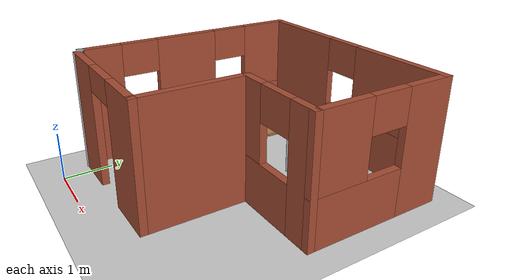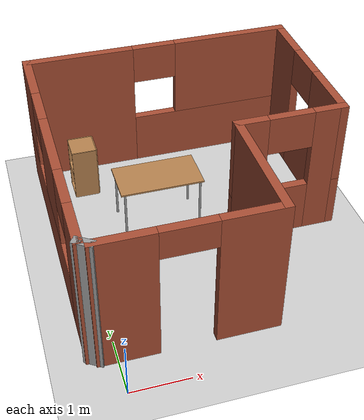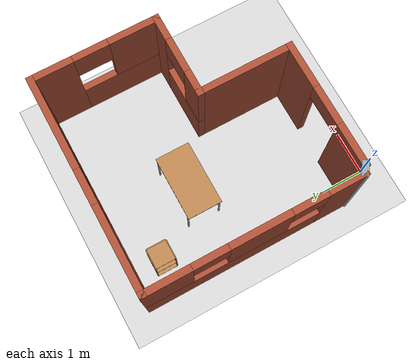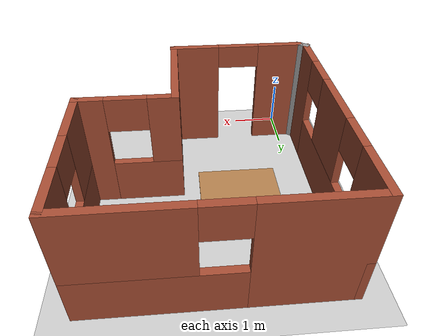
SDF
<sdf version="1.7">
 <world name="default">
  <light name="sun" type="directional">
   <pose>0 0 10 0 -0 0</pose>
   <diffuse>0.8 0.8 0.8 1</diffuse>
   <specular>0.2 0.2 0.2 1</specular>
   <attenuation>
    <range>1000</range>
    <constant>0.9</constant>
    <linear>0.01</linear>
    <quadratic>0.001</quadratic>
   </attenuation>
   <direction>-0.5 0.1 -0.9</direction>
   <spot><inner_angle>0</inner_angle><outer_angle>0</outer_angle><falloff>0</falloff></spot>
  </light>
  <model name="ground_plane">
   <static>1</static>
   <link name="link">
    <collision name="collision">
     <geometry><plane><normal>0 0 1</normal><size>100 100</size></plane></geometry>
     <surface><friction><ode><mu>100</mu><mu2>50</mu2></ode></friction></surface>
    </collision>
    <visual name="visual">
     <cast_shadows>0</cast_shadows>
     <geometry><plane><normal>0 0 1</normal><size>100 100</size></plane></geometry>
     <material>
      <script><uri>file://media/materials/scripts/gazebo.material</uri><name>Gazebo/Grey</name></script>
     </material>
    </visual>
   </link>
  </model>
  <gravity>0 0 -9.8</gravity>
  <magnetic_field>6e-06 2.3e-05 -4.2e-05</magnetic_field>
  <atmosphere type="adiabatic"/>
  <physics type="ode">
   <max_step_size>0.001</max_step_size>
   <real_time_factor>1</real_time_factor>
   <real_time_update_rate>1000</real_time_update_rate>
  </physics>
  <scene><ambient>0.4 0.4 0.4 1</ambient><background>0.7 0.7 0.7 1</background><shadows>1</shadows></scene>
  <audio><device>default</device></audio>
  <spherical_coordinates>
   <surface_model>EARTH_WGS84</surface_model>
   <latitude_deg>0</latitude_deg>
   <longitude_deg>0</longitude_deg>
   <elevation>0</elevation>
   <heading_deg>0</heading_deg>
  </spherical_coordinates>
  <model name="office">
   <pose>1.99467 4.71474 0 0 -0 0</pose>
   <link name="Wall_10">
    <pose>2.4395 -0.530632 0 0 -0 -1.5708</pose>
    <visual name="Wall_10_Visual_0">
     <pose>-0.995318 0 1.25 0 -0 0</pose>
     <geometry><box><size>1.00936 0.15 2.5</size></box></geometry>
     <material>
      <script><uri>file://media/materials/scripts/gazebo.material</uri><name>Gazebo/Bricks</name></script>
      <ambient>1 1 1 1</ambient>
     </material>
     <meta><layer>0</layer></meta>
    </visual>
    <collision name="Wall_10_Collision_0">
     <geometry><box><size>1.00936 0.15 2.5</size></box></geometry>
     <pose>-0.995318 0 1.25 0 -0 0</pose>
    </collision>
    <visual name="Wall_10_Visual_1">
     <pose>0.504682 0 0.5 0 -0 0</pose>
     <geometry><box><size>1.99064 0.15 1</size></box></geometry>
     <material>
      <script><uri>file://media/materials/scripts/gazebo.material</uri><name>Gazebo/Bricks</name></script>
      <ambient>1 1 1 1</ambient>
     </material>
     <meta><layer>0</layer></meta>
    </visual>
    <collision name="Wall_10_Collision_1">
     <geometry><box><size>1.99064 0.15 1</size></box></geometry>
     <pose>0.504682 0 0.5 0 -0 0</pose>
    </collision>
    <visual name="Wall_10_Visual_2">
     <pose>0.904682 0 1.75 0 -0 0</pose>
     <geometry><box><size>1.19064 0.15 1.5</size></box></geometry>
     <material>
      <script><uri>file://media/materials/scripts/gazebo.material</uri><name>Gazebo/Bricks</name></script>
      <ambient>1 1 1 1</ambient>
     </material>
     <meta><layer>0</layer></meta>
    </visual>
    <collision name="Wall_10_Collision_2">
     <geometry><box><size>1.19064 0.15 1.5</size></box></geometry>
     <pose>0.904682 0 1.75 0 -0 0</pose>
    </collision>
    <visual name="Wall_10_Visual_3">
     <pose>-0.090637 0 2.15 0 -0 0</pose>
     <geometry><box><size>0.8 0.15 0.7</size></box></geometry>
     <material>
      <script><uri>file://media/materials/scripts/gazebo.material</uri><name>Gazebo/Bricks</name></script>
      <ambient>1 1 1 1</ambient>
     </material>
     <meta><layer>0</layer></meta>
    </visual>
    <collision name="Wall_10_Collision_3">
     <geometry><box><size>0.8 0.15 0.7</size></box></geometry>
     <pose>-0.090637 0 2.15 0 -0 0</pose>
    </collision>
   </link>
   <link name="Wall_11">
    <pose>1.5145 -1.95563 0 0 -0 3.14159</pose>
    <visual name="Wall_11_Visual_0">
     <pose>-0.699407 0 1.25 0 -0 0</pose>
     <geometry><box><size>0.601186 0.15 2.5</size></box></geometry>
     <material>
      <script><uri>file://media/materials/scripts/gazebo.material</uri><name>Gazebo/Bricks</name></script>
      <ambient>1 1 1 1</ambient>
     </material>
     <meta><layer>0</layer></meta>
    </visual>
    <collision name="Wall_11_Collision_0">
     <geometry><box><size>0.601186 0.15 2.5</size></box></geometry>
     <pose>-0.699407 0 1.25 0 -0 0</pose>
    </collision>
    <visual name="Wall_11_Visual_1">
     <pose>0.300593 0 0.5 0 -0 0</pose>
     <geometry><box><size>1.39881 0.15 1</size></box></geometry>
     <material>
      <script><uri>file://media/materials/scripts/gazebo.material</uri><name>Gazebo/Bricks</name></script>
      <ambient>1 1 1 1</ambient>
     </material>
     <meta><layer>0</layer></meta>
    </visual>
    <collision name="Wall_11_Collision_1">
     <geometry><box><size>1.39881 0.15 1</size></box></geometry>
     <pose>0.300593 0 0.5 0 -0 0</pose>
    </collision>
    <visual name="Wall_11_Visual_2">
     <pose>0.700593 0 1.75 0 -0 0</pose>
     <geometry><box><size>0.598814 0.15 1.5</size></box></geometry>
     <material>
      <script><uri>file://media/materials/scripts/gazebo.material</uri><name>Gazebo/Bricks</name></script>
      <ambient>1 1 1 1</ambient>
     </material>
     <meta><layer>0</layer></meta>
    </visual>
    <collision name="Wall_11_Collision_2">
     <geometry><box><size>0.598814 0.15 1.5</size></box></geometry>
     <pose>0.700593 0 1.75 0 -0 0</pose>
    </collision>
    <visual name="Wall_11_Visual_3">
     <pose>0.001186 0 2.15 0 -0 0</pose>
     <geometry><box><size>0.8 0.15 0.7</size></box></geometry>
     <material>
      <script><uri>file://media/materials/scripts/gazebo.material</uri><name>Gazebo/Bricks</name></script>
      <ambient>1 1 1 1</ambient>
     </material>
     <meta><layer>0</layer></meta>
    </visual>
    <collision name="Wall_11_Collision_3">
     <geometry><box><size>0.8 0.15 0.7</size></box></geometry>
     <pose>0.001186 0 2.15 0 -0 0</pose>
    </collision>
   </link>
   <link name="Wall_12">
    <collision name="Wall_12_Collision">
     <geometry><box><size>2.25 0.15 2.5</size></box></geometry>
     <pose>0 0 1.25 0 -0 0</pose>
    </collision>
    <visual name="Wall_12_Visual">
     <pose>0 0 1.25 0 -0 0</pose>
     <geometry><box><size>2.25 0.15 2.5</size></box></geometry>
     <material>
      <script><uri>file://media/materials/scripts/gazebo.material</uri><name>Gazebo/Bricks</name></script>
      <ambient>1 1 1 1</ambient>
     </material>
     <meta><layer>0</layer></meta>
    </visual>
    <pose>0.589503 -3.00563 0 0 -0 -1.5708</pose>
   </link>
   <link name="Wall_13">
    <pose>-0.835497 -4.05563 0 0 -0 3.14159</pose>
    <visual name="Wall_13_Visual_0">
     <pose>-0.955959 0 1.25 0 -0 0</pose>
     <geometry><box><size>1.08808 0.15 2.5</size></box></geometry>
     <material>
      <script><uri>file://media/materials/scripts/gazebo.material</uri><name>Gazebo/Bricks</name></script>
      <ambient>1 1 1 1</ambient>
     </material>
     <meta><layer>0</layer></meta>
    </visual>
    <collision name="Wall_13_Collision_0">
     <geometry><box><size>1.08808 0.15 2.5</size></box></geometry>
     <pose>-0.955959 0 1.25 0 -0 0</pose>
    </collision>
    <visual name="Wall_13_Visual_1">
     <pose>0.994041 0 1.25 0 -0 0</pose>
     <geometry><box><size>1.01192 0.15 2.5</size></box></geometry>
     <material>
      <script><uri>file://media/materials/scripts/gazebo.material</uri><name>Gazebo/Bricks</name></script>
      <ambient>1 1 1 1</ambient>
     </material>
     <meta><layer>0</layer></meta>
    </visual>
    <collision name="Wall_13_Collision_1">
     <geometry><box><size>1.01192 0.15 2.5</size></box></geometry>
     <pose>0.994041 0 1.25 0 -0 0</pose>
    </collision>
    <visual name="Wall_13_Visual_2">
     <pose>0.038083 0 2.25 0 -0 0</pose>
     <geometry><box><size>0.9 0.15 0.5</size></box></geometry>
     <material>
      <script><uri>file://media/materials/scripts/gazebo.material</uri><name>Gazebo/Bricks</name></script>
      <ambient>1 1 1 1</ambient>
     </material>
     <meta><layer>0</layer></meta>
    </visual>
    <collision name="Wall_13_Collision_2">
     <geometry><box><size>0.9 0.15 0.5</size></box></geometry>
     <pose>0.038083 0 2.25 0 -0 0</pose>
    </collision>
   </link>
   <link name="Wall_14">
    <collision name="Wall_14_Collision">
     <geometry><box><size>0.330278 0.15 2.5</size></box></geometry>
     <pose>0 0 1.25 0 -0 0</pose>
    </collision>
    <visual name="Wall_14_Visual">
     <pose>0 0 1.25 0 -0 0</pose>
     <geometry><box><size>0.330278 0.15 2.5</size></box></geometry>
     <material>
      <script><uri>file://media/materials/scripts/gazebo.material</uri><name>Gazebo/Grey</name></script>
      <ambient>1 1 1 1</ambient>
     </material>
     <meta><layer>0</layer></meta>
    </visual>
    <pose>-2.3355 -4.00563 0 0 -0 2.55359</pose>
   </link>
   <link name="Wall_8">
    <pose>-2.4105 -1.53063 0 0 -0 1.5708</pose>
    <visual name="Wall_8_Visual_0">
     <pose>-2.05615 0 1.25 0 -0 0</pose>
     <geometry><box><size>0.887703 0.15 2.5</size></box></geometry>
     <material>
      <script><uri>file://media/materials/scripts/gazebo.material</uri><name>Gazebo/Bricks</name></script>
      <ambient>1 1 1 1</ambient>
     </material>
     <meta><layer>0</layer></meta>
    </visual>
    <collision name="Wall_8_Collision_0">
     <geometry><box><size>0.887703 0.15 2.5</size></box></geometry>
     <pose>-2.05615 0 1.25 0 -0 0</pose>
    </collision>
    <visual name="Wall_8_Visual_1">
     <pose>0.443852 0 0.5 0 -0 0</pose>
     <geometry><box><size>4.1123 0.15 1</size></box></geometry>
     <material>
      <script><uri>file://media/materials/scripts/gazebo.material</uri><name>Gazebo/Bricks</name></script>
      <ambient>1 1 1 1</ambient>
     </material>
     <meta><layer>0</layer></meta>
    </visual>
    <collision name="Wall_8_Collision_1">
     <geometry><box><size>4.1123 0.15 1</size></box></geometry>
     <pose>0.443852 0 0.5 0 -0 0</pose>
    </collision>
    <visual name="Wall_8_Visual_2">
     <pose>-0.118985 0 1.75 0 -0 0</pose>
     <geometry><box><size>1.38662 0.15 1.5</size></box></geometry>
     <material>
      <script><uri>file://media/materials/scripts/gazebo.material</uri><name>Gazebo/Bricks</name></script>
      <ambient>1 1 1 1</ambient>
     </material>
     <meta><layer>0</layer></meta>
    </visual>
    <collision name="Wall_8_Collision_2">
     <geometry><box><size>1.38662 0.15 1.5</size></box></geometry>
     <pose>-0.118985 0 1.75 0 -0 0</pose>
    </collision>
    <visual name="Wall_8_Visual_3">
     <pose>1.93716 0 1.75 0 -0 0</pose>
     <geometry><box><size>1.12567 0.15 1.5</size></box></geometry>
     <material>
      <script><uri>file://media/materials/scripts/gazebo.material</uri><name>Gazebo/Bricks</name></script>
      <ambient>1 1 1 1</ambient>
     </material>
     <meta><layer>0</layer></meta>
    </visual>
    <collision name="Wall_8_Collision_3">
     <geometry><box><size>1.12567 0.15 1.5</size></box></geometry>
     <pose>1.93716 0 1.75 0 -0 0</pose>
    </collision>
    <visual name="Wall_8_Visual_4">
     <pose>-1.2123 0 2.15 0 -0 0</pose>
     <geometry><box><size>0.8 0.15 0.7</size></box></geometry>
     <material>
      <script><uri>file://media/materials/scripts/gazebo.material</uri><name>Gazebo/Bricks</name></script>
      <ambient>1 1 1 1</ambient>
     </material>
     <meta><layer>0</layer></meta>
    </visual>
    <collision name="Wall_8_Collision_4">
     <geometry><box><size>0.8 0.15 0.7</size></box></geometry>
     <pose>-1.2123 0 2.15 0 -0 0</pose>
    </collision>
    <visual name="Wall_8_Visual_5">
     <pose>0.974327 0 2.15 0 -0 0</pose>
     <geometry><box><size>0.8 0.15 0.7</size></box></geometry>
     <material>
      <script><uri>file://media/materials/scripts/gazebo.material</uri><name>Gazebo/Bricks</name></script>
      <ambient>1 1 1 1</ambient>
     </material>
     <meta><layer>0</layer></meta>
    </visual>
    <collision name="Wall_8_Collision_5">
     <geometry><box><size>0.8 0.15 0.7</size></box></geometry>
     <pose>0.974327 0 2.15 0 -0 0</pose>
    </collision>
   </link>
   <link name="Wall_9">
    <pose>0.014503 0.894367 0 0 -0 0</pose>
    <visual name="Wall_9_Visual_0">
     <pose>-1.4915 0 1.25 0 -0 0</pose>
     <geometry><box><size>2.017 0.15 2.5</size></box></geometry>
     <material>
      <script><uri>file://media/materials/scripts/gazebo.material</uri><name>Gazebo/Bricks</name></script>
      <ambient>1 1 1 1</ambient>
     </material>
     <meta><layer>0</layer></meta>
    </visual>
    <collision name="Wall_9_Collision_0">
     <geometry><box><size>2.017 0.15 2.5</size></box></geometry>
     <pose>-1.4915 0 1.25 0 -0 0</pose>
    </collision>
    <visual name="Wall_9_Visual_1">
     <pose>1.0085 0 0.5 0 -0 0</pose>
     <geometry><box><size>2.983 0.15 1</size></box></geometry>
     <material>
      <script><uri>file://media/materials/scripts/gazebo.material</uri><name>Gazebo/Bricks</name></script>
      <ambient>1 1 1 1</ambient>
     </material>
     <meta><layer>0</layer></meta>
    </visual>
    <collision name="Wall_9_Collision_1">
     <geometry><box><size>2.983 0.15 1</size></box></geometry>
     <pose>1.0085 0 0.5 0 -0 0</pose>
    </collision>
    <visual name="Wall_9_Visual_2">
     <pose>1.4085 0 1.75 0 -0 0</pose>
     <geometry><box><size>2.183 0.15 1.5</size></box></geometry>
     <material>
      <script><uri>file://media/materials/scripts/gazebo.material</uri><name>Gazebo/Bricks</name></script>
      <ambient>1 1 1 1</ambient>
     </material>
     <meta><layer>0</layer></meta>
    </visual>
    <collision name="Wall_9_Collision_2">
     <geometry><box><size>2.183 0.15 1.5</size></box></geometry>
     <pose>1.4085 0 1.75 0 -0 0</pose>
    </collision>
    <visual name="Wall_9_Visual_3">
     <pose>-0.082999 0 2.15 0 -0 0</pose>
     <geometry><box><size>0.8 0.15 0.7</size></box></geometry>
     <material>
      <script><uri>file://media/materials/scripts/gazebo.material</uri><name>Gazebo/Bricks</name></script>
      <ambient>1 1 1 1</ambient>
     </material>
     <meta><layer>0</layer></meta>
    </visual>
    <collision name="Wall_9_Collision_3">
     <geometry><box><size>0.8 0.15 0.7</size></box></geometry>
     <pose>-0.082999 0 2.15 0 -0 0</pose>
    </collision>
   </link>
   <static>1</static>
  </model>
  <model name="table">
   <static>1</static>
   <link name="link">
    <collision name="surface">
     <pose>0 0 1 0 -0 0</pose>
     <geometry><box><size>1.5 0.8 0.03</size></box></geometry>
     <surface><friction><ode><mu>0.6</mu><mu2>0.6</mu2></ode></friction></surface>
    </collision>
    <visual name="visual1">
     <pose>0 0 1 0 -0 0</pose>
     <geometry><box><size>1.5 0.8 0.03</size></box></geometry>
     <material>
      <script><uri>file://media/materials/scripts/gazebo.material</uri><name>Gazebo/Wood</name></script>
     </material>
    </visual>
    <collision name="front_left_leg">
     <pose>0.68 0.38 0.5 0 -0 0</pose>
     <geometry><cylinder><radius>0.02</radius><length>1</length></cylinder></geometry>
    </collision>
    <visual name="front_left_leg">
     <pose>0.68 0.38 0.5 0 -0 0</pose>
     <geometry><cylinder><radius>0.02</radius><length>1</length></cylinder></geometry>
     <material>
      <script><uri>file://media/materials/scripts/gazebo.material</uri><name>Gazebo/Grey</name></script>
     </material>
    </visual>
    <collision name="front_right_leg">
     <pose>0.68 -0.38 0.5 0 -0 0</pose>
     <geometry><cylinder><radius>0.02</radius><length>1</length></cylinder></geometry>
    </collision>
    <visual name="front_right_leg">
     <pose>0.68 -0.38 0.5 0 -0 0</pose>
     <geometry><cylinder><radius>0.02</radius><length>1</length></cylinder></geometry>
     <material>
      <script><uri>file://media/materials/scripts/gazebo.material</uri><name>Gazebo/Grey</name></script>
     </material>
    </visual>
    <collision name="back_right_leg">
     <pose>-0.68 -0.38 0.5 0 -0 0</pose>
     <geometry><cylinder><radius>0.02</radius><length>1</length></cylinder></geometry>
    </collision>
    <visual name="back_right_leg">
     <pose>-0.68 -0.38 0.5 0 -0 0</pose>
     <geometry><cylinder><radius>0.02</radius><length>1</length></cylinder></geometry>
     <material>
      <script><uri>file://media/materials/scripts/gazebo.material</uri><name>Gazebo/Grey</name></script>
     </material>
    </visual>
    <collision name="back_left_leg">
     <pose>-0.68 0.38 0.5 0 -0 0</pose>
     <geometry><cylinder><radius>0.02</radius><length>1</length></cylinder></geometry>
    </collision>
    <visual name="back_left_leg">
     <pose>-0.68 0.38 0.5 0 -0 0</pose>
     <geometry><cylinder><radius>0.02</radius><length>1</length></cylinder></geometry>
     <material>
      <script><uri>file://media/materials/scripts/gazebo.material</uri><name>Gazebo/Grey</name></script>
     </material>
    </visual>
   </link>
   <pose>1.45453 3.6534 0 0 -0 0</pose>
  </model>
  <model name="cabinet">
   <static>1</static>
   <link name="cabinet_bottom_plate">
    <inertial>
     <pose>0 0 -1 0 -0 0</pose>
     <inertia><ixx>2.05</ixx><ixy>0</ixy><ixz>0</ixz><iyy>2.05</iyy><iyz>0</iyz><izz>2.05</izz></inertia>
     <mass>25</mass>
    </inertial>
    <collision name="cabinet_bottom_plate_geom">
     <pose>0 0 0.01 0 -0 0</pose>
     <geometry><box><size>0.45 0.45 0.02</size></box></geometry>
    </collision>
    <visual name="cabinet_bottom_plate_geom_visual">
     <pose>0 0 0.01 0 -0 0</pose>
     <geometry><box><size>0.45 0.45 0.02</size></box></geometry>
     <material>
      <script><uri>file://media/materials/scripts/gazebo.material</uri><name>Gazebo/Wood</name></script>
     </material>
    </visual>
    <collision name="cabinet_bottom_plate_geom_cabinet_back_plate">
     <pose>0.235 0 0.51 0 -0 0</pose>
     <geometry><box><size>0.02 0.45 1.02</size></box></geometry>
    </collision>
    <visual name="cabinet_bottom_plate_geom_cabinet_back_plate_visual">
     <pose>0.235 0 0.51 0 -0 0</pose>
     <geometry><box><size>0.02 0.45 1.02</size></box></geometry>
     <material>
      <script><uri>file://media/materials/scripts/gazebo.material</uri><name>Gazebo/Wood</name></script>
     </material>
    </visual>
    <collision name="cabinet_bottom_plate_geom_cabinet_left_plate">
     <pose>0 0.235 0.51 0 -0 0</pose>
     <geometry><box><size>0.45 0.02 1.02</size></box></geometry>
    </collision>
    <visual name="cabinet_bottom_plate_geom_cabinet_left_plate_visual">
     <pose>0 0.235 0.51 0 -0 0</pose>
     <geometry><box><size>0.45 0.02 1.02</size></box></geometry>
     <material>
      <script><uri>file://media/materials/scripts/gazebo.material</uri><name>Gazebo/Wood</name></script>
     </material>
    </visual>
    <collision name="cabinet_bottom_plate_geom_cabinet_middle_plate">
     <pose>0 0 0.51 0 -0 0</pose>
     <geometry><box><size>0.45 0.45 0.02</size></box></geometry>
    </collision>
    <visual name="cabinet_bottom_plate_geom_cabinet_middle_plate_visual">
     <pose>0 0 0.51 0 -0 0</pose>
     <geometry><box><size>0.45 0.45 0.02</size></box></geometry>
     <material>
      <script><uri>file://media/materials/scripts/gazebo.material</uri><name>Gazebo/Wood</name></script>
     </material>
    </visual>
    <collision name="cabinet_bottom_plate_geom_cabinet_right_plate">
     <pose>0 -0.235 0.51 0 -0 0</pose>
     <geometry><box><size>0.45 0.02 1.02</size></box></geometry>
    </collision>
    <visual name="cabinet_bottom_plate_geom_cabinet_right_plate_visual">
     <pose>0 -0.235 0.51 0 -0 0</pose>
     <geometry><box><size>0.45 0.02 1.02</size></box></geometry>
     <material>
      <script><uri>file://media/materials/scripts/gazebo.material</uri><name>Gazebo/Wood</name></script>
     </material>
    </visual>
    <collision name="cabinet_bottom_plate_geom_cabinet_top_plate">
     <pose>0 0 1.01 0 -0 0</pose>
     <geometry><box><size>0.45 0.45 0.02</size></box></geometry>
    </collision>
    <visual name="cabinet_bottom_plate_geom_cabinet_top_plate_visual">
     <pose>0 0 1.01 0 -0 0</pose>
     <geometry><box><size>0.45 0.45 0.02</size></box></geometry>
     <material>
      <script><uri>file://media/materials/scripts/gazebo.material</uri><name>Gazebo/Wood</name></script>
     </material>
    </visual>
   </link>
   <pose>0.330971 4.90642 0 0 -0 0</pose>
  </model>
 </world>
</sdf>
